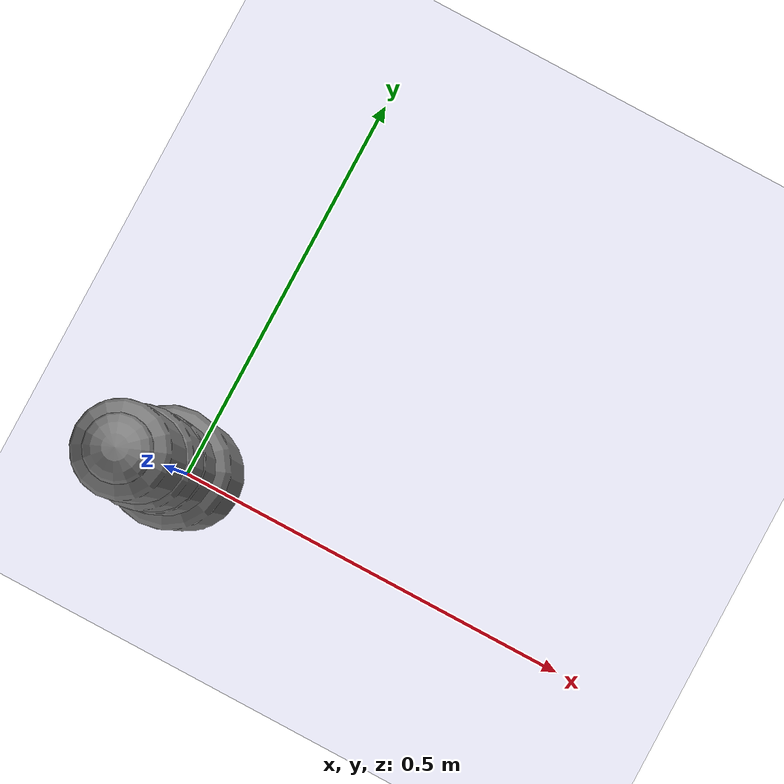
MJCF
<?xml version='1.0' encoding='UTF-8'?>
<mujoco model="robot_model">
  <worldbody>
    <light name="light" pos="0 -3 10" dir="0 0.5 -1" diffuse=".8 .8 .8" specular="0.1 0.1 0.1"/>
    <geom name="floor" type="plane" size="10.0 10.0 0.1" pos="0 0 0" rgba="0.8 0.8 1 1" contype="2" conaffinity="1"/>
    <body name="limb0" pos="0 0 0">
      <geom type="capsule" fromto="0 0 0 0 0 0.40793322973369267" size="0.0682194732557124" density="741.3769149841928" contype="1" conaffinity="2"/>
      <site type="sphere" size="0.01" name="limb0_site0" pos="0 0 0.347580459883666"/>
      <site type="sphere" size="0.01" name="limb0_site1" pos="0 0 0.309048822093717"/>
      <site type="sphere" size="0.01" name="limb0_site2" pos="0 0 0.19415372803520914"/>
      <freejoint name="limb0_root"/>
      <body name="limb1" pos="0 0 0.347580459883666">
        <geom type="capsule" fromto="0 0 0 0 0 0.47800985932185064" size="0.027761098196031727" density="530.0557798026546" contype="1" conaffinity="2"/>
        <site type="sphere" size="0.01" name="limb1_site0" pos="0 0 0.20356348151427747"/>
        <site type="sphere" size="0.01" name="limb1_site1" pos="0 0 0.4735857433903531"/>
        <site type="sphere" size="0.01" name="limb1_site2" pos="0 0 0.32117616456832787"/>
        <body name="limb2" pos="0 0 0.20356348151427747">
          <geom type="capsule" fromto="0 0 0 0 0 0.39928971003249797" size="0.02716250750331973" density="469.34505849163423" contype="1" conaffinity="2"/>
          <site type="sphere" size="0.01" name="limb2_site0" pos="0 0 0.15925413588146772"/>
          <body name="limb3" pos="0 0 0.15925413588146772">
            <geom type="capsule" fromto="0 0 0 0 0 0.3456805742671815" size="0.03655823529860771" density="955.1876345171962" contype="1" conaffinity="2"/>
            <joint name="joint_limb2_limb3_0" type="hinge" axis="0 1 0" range="-93.28860768587153 93.28860768587153" damping="5.0"/>
          </body>
          <joint name="joint_limb1_limb2_0" type="hinge" axis="0 0 1" range="-59.67518871534252 59.67518871534252" damping="5.0"/>
        </body>
        <body name="limb4" pos="0 0 0.4735857433903531">
          <geom type="capsule" fromto="0 0 0 0 0 0.10195976599543025" size="0.02379106713444668" density="658.3366429311827" contype="1" conaffinity="2"/>
          <joint name="joint_limb1_limb4_0" type="hinge" axis="0 0 1" range="-46.46951283884399 46.46951283884399" damping="5.0"/>
        </body>
        <body name="limb5" pos="0 0 0.32117616456832787">
          <geom type="capsule" fromto="0 0 0 0 0 0.3308791795946363" size="0.02680314006459466" density="828.7191436632914" contype="1" conaffinity="2"/>
          <joint name="joint_limb1_limb5_0" type="hinge" axis="0 0 1" range="-96.048659866525 96.048659866525" damping="5.0"/>
        </body>
        <joint name="joint_limb0_limb1_0" type="hinge" axis="1 0 0" range="-102.21371590644401 102.21371590644401" damping="5.0"/>
      </body>
      <body name="limb6" pos="0 0 0.309048822093717">
        <geom type="capsule" fromto="0 0 0 0 0 0.372274530228085" size="0.052960072305996767" density="1069.5549891432568" contype="1" conaffinity="2"/>
        <site type="sphere" size="0.01" name="limb6_site0" pos="0 0 0.3650181458444618"/>
        <site type="sphere" size="0.01" name="limb6_site1" pos="0 0 0.13266544409228273"/>
        <body name="limb7" pos="0 0 0.3650181458444618">
          <geom type="capsule" fromto="0 0 0 0 0 0.5" size="0.045329815490319995" density="1017.2531489540214" contype="1" conaffinity="2"/>
          <site type="sphere" size="0.01" name="limb7_site0" pos="0 0 0.34785567640622883"/>
          <body name="limb8" pos="0 0 0.34785567640622883">
            <geom type="capsule" fromto="0 0 0 0 0 0.19166066799868264" size="0.0314707546179414" density="956.2416848734547" contype="1" conaffinity="2"/>
            <joint name="joint_limb7_limb8_0" type="hinge" axis="0 1 0" range="-39.54825129765963 39.54825129765963" damping="5.0"/>
          </body>
          <joint name="joint_limb6_limb7_0" type="hinge" axis="0 1 0" range="-60.504894728636025 60.504894728636025" damping="5.0"/>
        </body>
        <body name="limb9" pos="0 0 0.13266544409228273">
          <geom type="capsule" fromto="0 0 0 0 0 0.4553959547646001" size="0.05112992904407712" density="905.1932138092933" contype="1" conaffinity="2"/>
          <joint name="joint_limb6_limb9_0" type="hinge" axis="0 0 1" range="-72.8282440056993 72.8282440056993" damping="5.0"/>
        </body>
        <joint name="joint_limb0_limb6_0" type="hinge" axis="0 1 0" range="-89.12714794406047 89.12714794406047" damping="5.0"/>
      </body>
      <body name="limb10" pos="0 0 0.19415372803520914">
        <geom type="capsule" fromto="0 0 0 0 0 0.43647014061798706" size="0.041248644928393044" density="789.216346642524" contype="1" conaffinity="2"/>
        <site type="sphere" size="0.01" name="limb10_site0" pos="0 0 0.3678912593167582"/>
        <body name="limb11" pos="0 0 0.3678912593167582">
          <geom type="capsule" fromto="0 0 0 0 0 0.47262763508255246" size="0.020529935239340557" density="656.832315651605" contype="1" conaffinity="2"/>
          <joint name="joint_limb10_limb11_0" type="hinge" axis="0 1 0" range="-116.19348413460918 116.19348413460918" damping="5.0"/>
        </body>
        <joint name="joint_limb0_limb10_0" type="hinge" axis="0 0 1" range="-45.82744000775369 45.82744000775369" damping="5.0"/>
      </body>
    </body>
  </worldbody>
  <actuator>
    <position name="position_actuator_joint_limb0_limb1_0" joint="joint_limb0_limb1_0" gear="1.086940635617162" inheritrange="1" forcerange="-3.3047815514845884 3.3047815514845884" forcelimited="true" kp="100.0"/>
    <position name="position_actuator_joint_limb1_limb2_0" joint="joint_limb1_limb2_0" gear="0.803252140963227" inheritrange="1" forcerange="-2.368898067740302 2.368898067740302" forcelimited="true" kp="100.0"/>
    <position name="position_actuator_joint_limb2_limb3_0" joint="joint_limb2_limb3_0" gear="1.2800378858069719" inheritrange="1" forcerange="-7.909396129535383 7.909396129535383" forcelimited="true" kp="100.0"/>
    <position name="position_actuator_joint_limb1_limb4_0" joint="joint_limb1_limb4_0" gear="1.7460413982765965" inheritrange="1" forcerange="-0.7824670345233358 0.7824670345233358" forcelimited="true" kp="100.0"/>
    <position name="position_actuator_joint_limb1_limb5_0" joint="joint_limb1_limb5_0" gear="0.6647418290958633" inheritrange="1" forcerange="-3.4285528121269997 3.4285528121269997" forcelimited="true" kp="100.0"/>
    <position name="position_actuator_joint_limb0_limb6_0" joint="joint_limb0_limb6_0" gear="1.8694611590103172" inheritrange="1" forcerange="-20.869594355142794 20.869594355142794" forcelimited="true" kp="100.0"/>
    <position name="position_actuator_joint_limb6_limb7_0" joint="joint_limb6_limb7_0" gear="1.855224638398584" inheritrange="1" forcerange="-18.401183504925072 18.401183504925072" forcelimited="true" kp="100.0"/>
    <position name="position_actuator_joint_limb7_limb8_0" joint="joint_limb7_limb8_0" gear="1.9577561249166682" inheritrange="1" forcerange="-3.4754816031092273 3.4754816031092273" forcelimited="true" kp="100.0"/>
    <position name="position_actuator_joint_limb6_limb9_0" joint="joint_limb6_limb9_0" gear="0.8397505935235454" inheritrange="1" forcerange="-19.46191769120985 19.46191769120985" forcelimited="true" kp="100.0"/>
    <position name="position_actuator_joint_limb0_limb10_0" joint="joint_limb0_limb10_0" gear="0.7342032220860385" inheritrange="1" forcerange="-10.36646920093445 10.36646920093445" forcelimited="true" kp="100.0"/>
    <position name="position_actuator_joint_limb10_limb11_0" joint="joint_limb10_limb11_0" gear="1.5911780312269714" inheritrange="1" forcerange="-2.17430426597321 2.17430426597321" forcelimited="true" kp="100.0"/>
  </actuator>
</mujoco>
